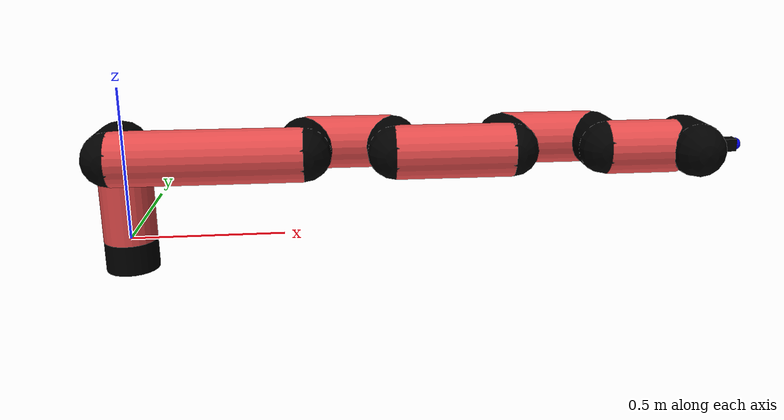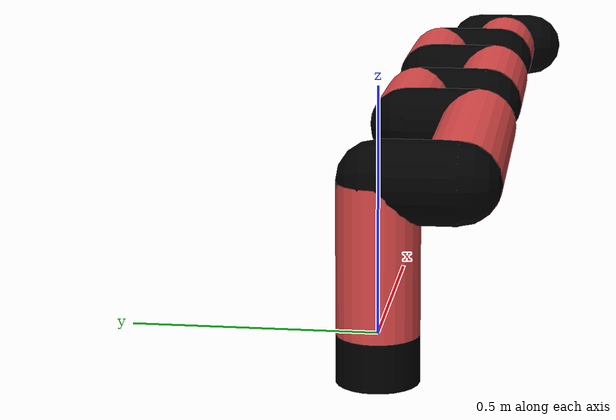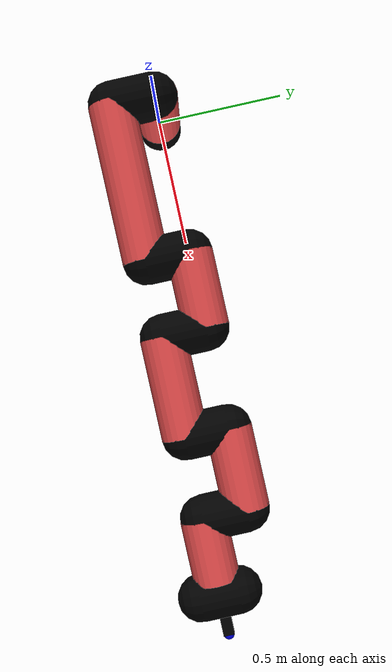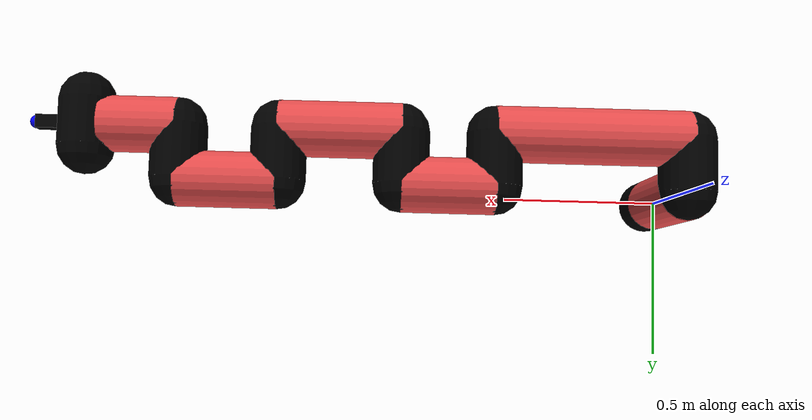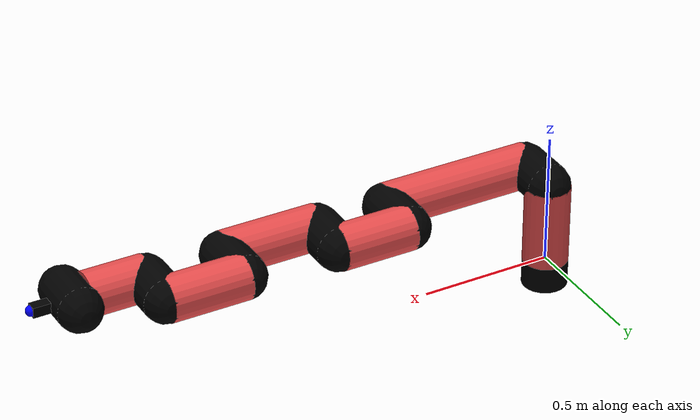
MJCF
<mujoco model="manipulator">
		<compiler angle="degree" coordinate="local" inertiafromgeom="auto" meshdir="meshes/"/>
		<option gravity="0 0 0" integrator="RK4" iterations="30" timestep="0.01"/>

		<default>
		<joint armature="1" limited="true" stiffness="10" damping="15" frictionloss="5.0"/>
		<geom conaffinity="1" condim="3" contype="1" friction=".5 .1 .1" margin="0.002"/>
		<motor ctrllimited="true"/>
		<position ctrllimited="true"/>
		</default>

		<asset>
		<texture builtin="gradient" height="100" rgb1="1.0 1.0 1.0" rgb2="1.0 1.0 1.0" type="skybox" width="100"/>
		<texture builtin="flat" height="32" name="arm_tex" rgb1="0.9 0.3 0.3" type="2d" width="32"/>
		<texture builtin="flat" height="32" name="gripper_tex" rgb1="0.0 0.0 0.0" type="cube" width="32"/>

		<material name="arm_mat" shininess="0.1" specular="0.1" texture="arm_tex"/>
		<material name="gripper_mat" shininess="1" specular="1" texture="gripper_tex"/>
		</asset>

		<worldbody>
		<light cutoff="45" diffuse=".8 .8 .8" dir="0 0.16 -1" directional="false" name="light" pos="0 -2.0 8.0" specular="0.3 0.3 0.3"/>

		<body name="base_link" pos="0 0 -0.1">
		<geom fromto="0 0 0 0 0 0.1" material="arm_mat" name="base_link" rgba="0.0 0.0 0.0 1" size="0.085" type="cylinder"/>
		</body>

		<body name="l1" pos="0 0 0">
<geom fromto="0 0 0 0 0 0.31" material="arm_mat" name="l1" rgba="0.9 0.3 0.3 1" size="0.085" type="cylinder"/>
<geom fromto="0 0 0.31 0 -0.16 0.31" material="arm_mat" name="l1_ex" rgba="0.0 0.0 0.0 1" size="0.085" type="capsule"/>
<joint axis="0 0 1" name="j1" pos="0 0 0" range="-90 90" damping="28.17" frictionloss="11.87"/>

<body name="l2" pos="0 -0.16 0.31">
<geom fromto="0 0 0 0.58 0 0" material="arm_mat" name="l2" rgba="0.9 0.3 0.3 1" size="0.085" type="cylinder"/>
<geom fromto="0.58 0 0 0.58 0.16 0" material="arm_mat" name="l2_ex" rgba="0.0 0.0 0.0 1" size="0.085" type="capsule"/>
<joint axis="0.0 1.0 0.0" name="j2" pos="0 0 0" range="-90 60" damping="32.97" frictionloss="8.72"/>

<body name="l3" pos="0.58 0.16 0">
<geom fromto="0 0 0 0.28 0 0" material="arm_mat" name="l3" rgba="0.9 0.3 0.3 1" size="0.085" type="cylinder"/>
<geom fromto="0.28 0 0 0.28 -0.16 0" material="arm_mat" name="l3_ex" rgba="0.0 0.0 0.0 1" size="0.085" type="capsule"/>
<joint axis="0.0 1.0 0.0" name="j3" pos="0 0 0" range="-30 60" damping="29.18" frictionloss="7.89"/>

<body name="l4" pos="0.28 -0.16 0">
<geom fromto="0 0 0 0.37 0 0" material="arm_mat" name="l4" rgba="0.9 0.3 0.3 1" size="0.085" type="cylinder"/>
<geom fromto="0.37 0 0 0.37 0.16 0" material="arm_mat" name="l4_ex" rgba="0.0 0.0 0.0 1" size="0.085" type="capsule"/>
<joint axis="0.0 1.0 0.0" name="j4" pos="0 0 0" range="-30 60" damping="36.64" frictionloss="8.29"/>

<body name="l5" pos="0.37 0.16 0">
<geom fromto="0 0 0 0.3 0 0" material="arm_mat" name="l5" rgba="0.9 0.3 0.3 1" size="0.085" type="cylinder"/>
<geom fromto="0.3 0 0 0.3 -0.16 0" material="arm_mat" name="l5_ex" rgba="0.0 0.0 0.0 1" size="0.085" type="capsule"/>
<joint axis="0.0 1.0 0.0" name="j5" pos="0 0 0" range="-30 60" damping="35.31" frictionloss="10.55"/>

<body name="l6" pos="0.3 -0.16 0">
<geom fromto="0 0 0 0.23 0 0" material="arm_mat" name="l6" rgba="0.9 0.3 0.3 1" size="0.085" type="cylinder"/>
<joint axis="0.0 1.0 0.0" name="j6" pos="0 0 0" range="-30 60" damping="23.02" frictionloss="12.17"/>

<body name="gripper" pos="0.23 0 0">
<geom fromto="0.05 -0.07 0 0.05 0.07 0" material="gripper_mat" name="gripper" rgba="0.0 0.0 0.0 1" size="0.085" type="capsule"/><joint axis="1 0 0" name="j7" pos="0 0 0" range="-90 90" damping="15" frictionloss="5.0"/><body name="finger" pos="0.1 0 0">
<geom fromto="0 0.0 0 0.1 0.0 0" material="gripper_mat" name="finger" rgba="0.0 0.0 0.0 1" size="0.020 0.06 0.06" type="box"/>
</body>
<site name="current" pos="0.2 0. 0.0" rgba="0. 0. 1.0 1" size="0.02" type="sphere"/>
</body>
</body>
</body>
</body>
</body>
</body>
</body>
</worldbody>
<actuator>
<motor ctrllimited="true" ctrlrange="-1.0 1.0" joint="j1" gear="86.9"/>
<motor ctrllimited="true" ctrlrange="-1.0 1.0" joint="j2" gear="79.37"/>
<motor ctrllimited="true" ctrlrange="-1.0 1.0" joint="j3" gear="94.39"/>
<motor ctrllimited="true" ctrlrange="-1.0 1.0" joint="j4" gear="62.12"/>
<motor ctrllimited="true" ctrlrange="-1.0 1.0" joint="j5" gear="85.74"/>
<motor ctrllimited="true" ctrlrange="-1.0 1.0" joint="j6" gear="79.09"/>
<motor ctrllimited="true" ctrlrange="-1.0 1.0" joint="j7" gear="80"/>
</actuator>
</mujoco>
